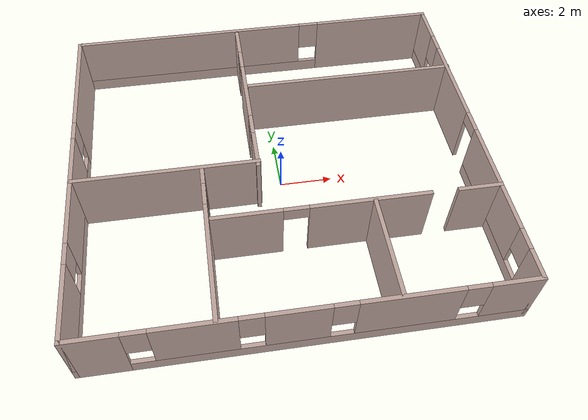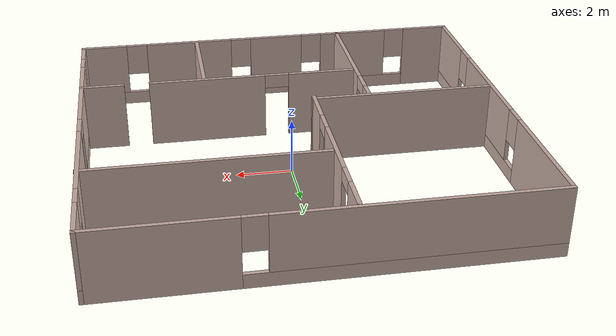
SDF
<?xml version='1.0'?>
<sdf version='1.7'>
  <model name='mapa'>
    <pose>-0.117898 -0.023817 0 0 -0 0</pose>
    <link name='Wall_11'>
      <collision name='Wall_11_Collision'>
        <geometry>
          <box>
            <size>6.75 0.15 2.5</size>
          </box>
        </geometry>
        <pose>0 0 1.25 0 -0 0</pose>
      </collision>
      <visual name='Wall_11_Visual'>
        <pose>0 0 1.25 0 -0 0</pose>
        <geometry>
          <box>
            <size>6.75 0.15 2.5</size>
          </box>
        </geometry>
        <material>
          <script>
            <uri>file://media/materials/scripts/gazebo.material</uri>
            <name>Gazebo/Grey</name>
          </script>
          <ambient>0.760784 0.662745 0.627451 1</ambient>
        </material>
        <meta>
          <layer>0</layer>
        </meta>
      </visual>
      <pose>-4.09658 -0.686555 0 0 -0 0</pose>
    </link>
    <link name='Wall_14'>
      <pose>-0.830677 2.83211 0 0 -0 -1.5708</pose>
      <visual name='Wall_14_Visual_0'>
        <pose>-3.08947 0 1.25 0 -0 0</pose>
        <geometry>
          <box>
            <size>1.32107 0.15 2.5</size>
          </box>
        </geometry>
        <material>
          <script>
            <uri>file://media/materials/scripts/gazebo.material</uri>
            <name>Gazebo/Grey</name>
          </script>
          <ambient>0.760784 0.662745 0.627451 1</ambient>
        </material>
        <meta>
          <layer>0</layer>
        </meta>
      </visual>
      <collision name='Wall_14_Collision_0'>
        <geometry>
          <box>
            <size>1.32107 0.15 2.5</size>
          </box>
        </geometry>
        <pose>-3.08947 0 1.25 0 -0 0</pose>
      </collision>
      <visual name='Wall_14_Visual_1'>
        <pose>-0.138075 0 1.25 0 -0 0</pose>
        <geometry>
          <box>
            <size>2.78171 0.15 2.5</size>
          </box>
        </geometry>
        <material>
          <script>
            <uri>file://media/materials/scripts/gazebo.material</uri>
            <name>Gazebo/Grey</name>
          </script>
          <ambient>0.760784 0.662745 0.627451 1</ambient>
        </material>
        <meta>
          <layer>0</layer>
        </meta>
      </visual>
      <collision name='Wall_14_Collision_1'>
        <geometry>
          <box>
            <size>2.78171 0.15 2.5</size>
          </box>
        </geometry>
        <pose>-0.138075 0 1.25 0 -0 0</pose>
      </collision>
      <visual name='Wall_14_Visual_2'>
        <pose>2.95139 0 1.25 0 -0 0</pose>
        <geometry>
          <box>
            <size>1.59722 0.15 2.5</size>
          </box>
        </geometry>
        <material>
          <script>
            <uri>file://media/materials/scripts/gazebo.material</uri>
            <name>Gazebo/Grey</name>
          </script>
          <ambient>0.760784 0.662745 0.627451 1</ambient>
        </material>
        <meta>
          <layer>0</layer>
        </meta>
      </visual>
      <collision name='Wall_14_Collision_2'>
        <geometry>
          <box>
            <size>1.59722 0.15 2.5</size>
          </box>
        </geometry>
        <pose>2.95139 0 1.25 0 -0 0</pose>
      </collision>
      <visual name='Wall_14_Visual_3'>
        <pose>-1.97893 0 2.25 0 -0 0</pose>
        <geometry>
          <box>
            <size>0.9 0.15 0.5</size>
          </box>
        </geometry>
        <material>
          <script>
            <uri>file://media/materials/scripts/gazebo.material</uri>
            <name>Gazebo/Grey</name>
          </script>
          <ambient>0.760784 0.662745 0.627451 1</ambient>
        </material>
        <meta>
          <layer>0</layer>
        </meta>
      </visual>
      <collision name='Wall_14_Collision_3'>
        <geometry>
          <box>
            <size>0.9 0.15 0.5</size>
          </box>
        </geometry>
        <pose>-1.97893 0 2.25 0 -0 0</pose>
      </collision>
      <visual name='Wall_14_Visual_4'>
        <pose>1.70278 0 2.25 0 -0 0</pose>
        <geometry>
          <box>
            <size>0.9 0.15 0.5</size>
          </box>
        </geometry>
        <material>
          <script>
            <uri>file://media/materials/scripts/gazebo.material</uri>
            <name>Gazebo/Grey</name>
          </script>
          <ambient>0.760784 0.662745 0.627451 1</ambient>
        </material>
        <meta>
          <layer>0</layer>
        </meta>
      </visual>
      <collision name='Wall_14_Collision_4'>
        <geometry>
          <box>
            <size>0.9 0.15 0.5</size>
          </box>
        </geometry>
        <pose>1.70278 0 2.25 0 -0 0</pose>
      </collision>
    </link>
    <link name='Wall_16'>
      <collision name='Wall_16_Collision'>
        <geometry>
          <box>
            <size>8.25 0.15 2.5</size>
          </box>
        </geometry>
        <pose>0 0 1.25 0 -0 0</pose>
      </collision>
      <visual name='Wall_16_Visual'>
        <pose>0 0 1.25 0 -0 0</pose>
        <geometry>
          <box>
            <size>8.25 0.15 2.5</size>
          </box>
        </geometry>
        <material>
          <script>
            <uri>file://media/materials/scripts/gazebo.material</uri>
            <name>Gazebo/Grey</name>
          </script>
          <ambient>0.760784 0.662745 0.627451 1</ambient>
        </material>
        <meta>
          <layer>0</layer>
        </meta>
      </visual>
      <pose>3.38377 3.20682 0 0 -0 0</pose>
    </link>
    <link name='Wall_18'>
      <pose>-2.84108 -3.69622 0 0 -0 -1.5708</pose>
      <visual name='Wall_18_Visual_0'>
        <pose>-2.63143 0 1.25 0 -0 0</pose>
        <geometry>
          <box>
            <size>0.73714 0.15 2.5</size>
          </box>
        </geometry>
        <material>
          <script>
            <uri>file://media/materials/scripts/gazebo.material</uri>
            <name>Gazebo/Grey</name>
          </script>
          <ambient>0.760784 0.662745 0.627451 1</ambient>
        </material>
        <meta>
          <layer>0</layer>
        </meta>
      </visual>
      <collision name='Wall_18_Collision_0'>
        <geometry>
          <box>
            <size>0.73714 0.15 2.5</size>
          </box>
        </geometry>
        <pose>-2.63143 0 1.25 0 -0 0</pose>
      </collision>
      <visual name='Wall_18_Visual_1'>
        <pose>0.81857 0 1.25 0 -0 0</pose>
        <geometry>
          <box>
            <size>4.36286 0.15 2.5</size>
          </box>
        </geometry>
        <material>
          <script>
            <uri>file://media/materials/scripts/gazebo.material</uri>
            <name>Gazebo/Grey</name>
          </script>
          <ambient>0.760784 0.662745 0.627451 1</ambient>
        </material>
        <meta>
          <layer>0</layer>
        </meta>
      </visual>
      <collision name='Wall_18_Collision_1'>
        <geometry>
          <box>
            <size>4.36286 0.15 2.5</size>
          </box>
        </geometry>
        <pose>0.81857 0 1.25 0 -0 0</pose>
      </collision>
      <visual name='Wall_18_Visual_2'>
        <pose>-1.81286 0 2.25 0 -0 0</pose>
        <geometry>
          <box>
            <size>0.9 0.15 0.5</size>
          </box>
        </geometry>
        <material>
          <script>
            <uri>file://media/materials/scripts/gazebo.material</uri>
            <name>Gazebo/Grey</name>
          </script>
          <ambient>0.760784 0.662745 0.627451 1</ambient>
        </material>
        <meta>
          <layer>0</layer>
        </meta>
      </visual>
      <collision name='Wall_18_Collision_2'>
        <geometry>
          <box>
            <size>0.9 0.15 0.5</size>
          </box>
        </geometry>
        <pose>-1.81286 0 2.25 0 -0 0</pose>
      </collision>
    </link>
    <link name='Wall_20'>
      <pose>2.37337 -2.95272 0 0 -0 0</pose>
      <visual name='Wall_20_Visual_0'>
        <pose>-3.87242 0 1.25 0 -0 0</pose>
        <geometry>
          <box>
            <size>2.50516 0.15 2.5</size>
          </box>
        </geometry>
        <material>
          <script>
            <uri>file://media/materials/scripts/gazebo.material</uri>
            <name>Gazebo/Grey</name>
          </script>
          <ambient>0.760784 0.662745 0.627451 1</ambient>
        </material>
        <meta>
          <layer>0</layer>
        </meta>
      </visual>
      <collision name='Wall_20_Collision_0'>
        <geometry>
          <box>
            <size>2.50516 0.15 2.5</size>
          </box>
        </geometry>
        <pose>-3.87242 0 1.25 0 -0 0</pose>
      </collision>
      <visual name='Wall_20_Visual_1'>
        <pose>0.438995 0 1.25 0 -0 0</pose>
        <geometry>
          <box>
            <size>4.31768 0.15 2.5</size>
          </box>
        </geometry>
        <material>
          <script>
            <uri>file://media/materials/scripts/gazebo.material</uri>
            <name>Gazebo/Grey</name>
          </script>
          <ambient>0.760784 0.662745 0.627451 1</ambient>
        </material>
        <meta>
          <layer>0</layer>
        </meta>
      </visual>
      <collision name='Wall_20_Collision_1'>
        <geometry>
          <box>
            <size>4.31768 0.15 2.5</size>
          </box>
        </geometry>
        <pose>0.438995 0 1.25 0 -0 0</pose>
      </collision>
      <visual name='Wall_20_Visual_2'>
        <pose>4.31142 0 1.25 0 -0 0</pose>
        <geometry>
          <box>
            <size>1.62717 0.15 2.5</size>
          </box>
        </geometry>
        <material>
          <script>
            <uri>file://media/materials/scripts/gazebo.material</uri>
            <name>Gazebo/Grey</name>
          </script>
          <ambient>0.760784 0.662745 0.627451 1</ambient>
        </material>
        <meta>
          <layer>0</layer>
        </meta>
      </visual>
      <collision name='Wall_20_Collision_2'>
        <geometry>
          <box>
            <size>1.62717 0.15 2.5</size>
          </box>
        </geometry>
        <pose>4.31142 0 1.25 0 -0 0</pose>
      </collision>
      <visual name='Wall_20_Visual_3'>
        <pose>-2.16984 0 2.25 0 -0 0</pose>
        <geometry>
          <box>
            <size>0.9 0.15 0.5</size>
          </box>
        </geometry>
        <material>
          <script>
            <uri>file://media/materials/scripts/gazebo.material</uri>
            <name>Gazebo/Grey</name>
          </script>
          <ambient>0.760784 0.662745 0.627451 1</ambient>
        </material>
        <meta>
          <layer>0</layer>
        </meta>
      </visual>
      <collision name='Wall_20_Collision_3'>
        <geometry>
          <box>
            <size>0.9 0.15 0.5</size>
          </box>
        </geometry>
        <pose>-2.16984 0 2.25 0 -0 0</pose>
      </collision>
      <visual name='Wall_20_Visual_4'>
        <pose>2.59783 0 2.25 0 -0 0</pose>
        <geometry>
          <box>
            <size>0 0.15 0.5</size>
          </box>
        </geometry>
        <material>
          <script>
            <uri>file://media/materials/scripts/gazebo.material</uri>
            <name>Gazebo/Grey</name>
          </script>
          <ambient>0.760784 0.662745 0.627451 1</ambient>
        </material>
        <meta>
          <layer>0</layer>
        </meta>
      </visual>
      <collision name='Wall_20_Collision_4'>
        <geometry>
          <box>
            <size>0 0.15 0.5</size>
          </box>
        </geometry>
        <pose>2.59783 0 2.25 0 -0 0</pose>
      </collision>
    </link>
    <link name='Wall_22'>
      <collision name='Wall_22_Collision'>
        <geometry>
          <box>
            <size>3.75 0.15 2.5</size>
          </box>
        </geometry>
        <pose>0 0 1.25 0 -0 0</pose>
      </collision>
      <visual name='Wall_22_Visual'>
        <pose>0 0 1.25 0 -0 0</pose>
        <geometry>
          <box>
            <size>3.75 0.15 2.5</size>
          </box>
        </geometry>
        <material>
          <script>
            <uri>file://media/materials/scripts/gazebo.material</uri>
            <name>Gazebo/Grey</name>
          </script>
          <ambient>0.760784 0.662745 0.627451 1</ambient>
        </material>
        <meta>
          <layer>0</layer>
        </meta>
      </visual>
      <pose>2.93349 -4.83162 0 0 -0 -1.5708</pose>
    </link>
    <link name='Wall_6'>
      <pose>-0.008773 -6.675 0 0 -0 0</pose>
      <visual name='Wall_6_Visual_0'>
        <pose>-6.58523 0 1.25 0 -0 0</pose>
        <geometry>
          <box>
            <size>1.82954 0.15 2.5</size>
          </box>
        </geometry>
        <material>
          <script>
            <uri>file://media/materials/scripts/gazebo.material</uri>
            <name>Gazebo/Grey</name>
          </script>
          <ambient>0.760784 0.662745 0.627451 1</ambient>
        </material>
        <meta>
          <layer>0</layer>
        </meta>
      </visual>
      <collision name='Wall_6_Collision_0'>
        <geometry>
          <box>
            <size>1.82954 0.15 2.5</size>
          </box>
        </geometry>
        <pose>-6.58523 0 1.25 0 -0 0</pose>
      </collision>
      <visual name='Wall_6_Visual_1'>
        <pose>0.914769 0 0.25 0 -0 0</pose>
        <geometry>
          <box>
            <size>13.1705 0.15 0.5</size>
          </box>
        </geometry>
        <material>
          <script>
            <uri>file://media/materials/scripts/gazebo.material</uri>
            <name>Gazebo/Grey</name>
          </script>
          <ambient>0.760784 0.662745 0.627451 1</ambient>
        </material>
        <meta>
          <layer>0</layer>
        </meta>
      </visual>
      <collision name='Wall_6_Collision_1'>
        <geometry>
          <box>
            <size>13.1705 0.15 0.5</size>
          </box>
        </geometry>
        <pose>0.914769 0 0.25 0 -0 0</pose>
      </collision>
      <visual name='Wall_6_Visual_2'>
        <pose>-3.5167 0 1.5 0 -0 0</pose>
        <geometry>
          <box>
            <size>2.70752 0.15 2</size>
          </box>
        </geometry>
        <material>
          <script>
            <uri>file://media/materials/scripts/gazebo.material</uri>
            <name>Gazebo/Grey</name>
          </script>
          <ambient>0.760784 0.662745 0.627451 1</ambient>
        </material>
        <meta>
          <layer>0</layer>
        </meta>
      </visual>
      <collision name='Wall_6_Collision_2'>
        <geometry>
          <box>
            <size>2.70752 0.15 2</size>
          </box>
        </geometry>
        <pose>-3.5167 0 1.5 0 -0 0</pose>
      </collision>
      <visual name='Wall_6_Visual_3'>
        <pose>-0.308608 0 1.5 0 -0 0</pose>
        <geometry>
          <box>
            <size>2.10867 0.15 2</size>
          </box>
        </geometry>
        <material>
          <script>
            <uri>file://media/materials/scripts/gazebo.material</uri>
            <name>Gazebo/Grey</name>
          </script>
          <ambient>0.760784 0.662745 0.627451 1</ambient>
        </material>
        <meta>
          <layer>0</layer>
        </meta>
      </visual>
      <collision name='Wall_6_Collision_3'>
        <geometry>
          <box>
            <size>2.10867 0.15 2</size>
          </box>
        </geometry>
        <pose>-0.308608 0 1.5 0 -0 0</pose>
      </collision>
      <visual name='Wall_6_Visual_4'>
        <pose>3.24168 0 1.5 0 -0 0</pose>
        <geometry>
          <box>
            <size>3.39191 0.15 2</size>
          </box>
        </geometry>
        <material>
          <script>
            <uri>file://media/materials/scripts/gazebo.material</uri>
            <name>Gazebo/Grey</name>
          </script>
          <ambient>0.760784 0.662745 0.627451 1</ambient>
        </material>
        <meta>
          <layer>0</layer>
        </meta>
      </visual>
      <collision name='Wall_6_Collision_4'>
        <geometry>
          <box>
            <size>3.39191 0.15 2</size>
          </box>
        </geometry>
        <pose>3.24168 0 1.5 0 -0 0</pose>
      </collision>
      <visual name='Wall_6_Visual_5'>
        <pose>6.61882 0 1.5 0 -0 0</pose>
        <geometry>
          <box>
            <size>1.76236 0.15 2</size>
          </box>
        </geometry>
        <material>
          <script>
            <uri>file://media/materials/scripts/gazebo.material</uri>
            <name>Gazebo/Grey</name>
          </script>
          <ambient>0.760784 0.662745 0.627451 1</ambient>
        </material>
        <meta>
          <layer>0</layer>
        </meta>
      </visual>
      <collision name='Wall_6_Collision_5'>
        <geometry>
          <box>
            <size>1.76236 0.15 2</size>
          </box>
        </geometry>
        <pose>6.61882 0 1.5 0 -0 0</pose>
      </collision>
      <visual name='Wall_6_Visual_6'>
        <pose>-5.27046 0 1.9 0 -0 0</pose>
        <geometry>
          <box>
            <size>0.8 0.15 1.2</size>
          </box>
        </geometry>
        <material>
          <script>
            <uri>file://media/materials/scripts/gazebo.material</uri>
            <name>Gazebo/Grey</name>
          </script>
          <ambient>0.760784 0.662745 0.627451 1</ambient>
        </material>
        <meta>
          <layer>0</layer>
        </meta>
      </visual>
      <collision name='Wall_6_Collision_6'>
        <geometry>
          <box>
            <size>0.8 0.15 1.2</size>
          </box>
        </geometry>
        <pose>-5.27046 0 1.9 0 -0 0</pose>
      </collision>
      <visual name='Wall_6_Visual_7'>
        <pose>-1.76294 0 1.9 0 -0 0</pose>
        <geometry>
          <box>
            <size>0.8 0.15 1.2</size>
          </box>
        </geometry>
        <material>
          <script>
            <uri>file://media/materials/scripts/gazebo.material</uri>
            <name>Gazebo/Grey</name>
          </script>
          <ambient>0.760784 0.662745 0.627451 1</ambient>
        </material>
        <meta>
          <layer>0</layer>
        </meta>
      </visual>
      <collision name='Wall_6_Collision_7'>
        <geometry>
          <box>
            <size>0.8 0.15 1.2</size>
          </box>
        </geometry>
        <pose>-1.76294 0 1.9 0 -0 0</pose>
      </collision>
      <visual name='Wall_6_Visual_8'>
        <pose>1.14573 0 1.9 0 -0 0</pose>
        <geometry>
          <box>
            <size>0.8 0.15 1.2</size>
          </box>
        </geometry>
        <material>
          <script>
            <uri>file://media/materials/scripts/gazebo.material</uri>
            <name>Gazebo/Grey</name>
          </script>
          <ambient>0.760784 0.662745 0.627451 1</ambient>
        </material>
        <meta>
          <layer>0</layer>
        </meta>
      </visual>
      <collision name='Wall_6_Collision_8'>
        <geometry>
          <box>
            <size>0.8 0.15 1.2</size>
          </box>
        </geometry>
        <pose>1.14573 0 1.9 0 -0 0</pose>
      </collision>
      <visual name='Wall_6_Visual_9'>
        <pose>5.33764 0 1.9 0 -0 0</pose>
        <geometry>
          <box>
            <size>0.8 0.15 1.2</size>
          </box>
        </geometry>
        <material>
          <script>
            <uri>file://media/materials/scripts/gazebo.material</uri>
            <name>Gazebo/Grey</name>
          </script>
          <ambient>0.760784 0.662745 0.627451 1</ambient>
        </material>
        <meta>
          <layer>0</layer>
        </meta>
      </visual>
      <collision name='Wall_6_Collision_9'>
        <geometry>
          <box>
            <size>0.8 0.15 1.2</size>
          </box>
        </geometry>
        <pose>5.33764 0 1.9 0 -0 0</pose>
      </collision>
    </link>
    <link name='Wall_7'>
      <pose>7.41623 -0 0 0 -0 1.5708</pose>
      <visual name='Wall_7_Visual_0'>
        <pose>-6.18489 0 1.25 0 -0 0</pose>
        <geometry>
          <box>
            <size>1.13022 0.15 2.5</size>
          </box>
        </geometry>
        <material>
          <script>
            <uri>file://media/materials/scripts/gazebo.material</uri>
            <name>Gazebo/Grey</name>
          </script>
          <ambient>0.760784 0.662745 0.627451 1</ambient>
        </material>
        <meta>
          <layer>0</layer>
        </meta>
      </visual>
      <collision name='Wall_7_Collision_0'>
        <geometry>
          <box>
            <size>1.13022 0.15 2.5</size>
          </box>
        </geometry>
        <pose>-6.18489 0 1.25 0 -0 0</pose>
      </collision>
      <visual name='Wall_7_Visual_1'>
        <pose>2.4191 0 1.25 0 -0 0</pose>
        <geometry>
          <box>
            <size>3.76966 0.15 2.5</size>
          </box>
        </geometry>
        <material>
          <script>
            <uri>file://media/materials/scripts/gazebo.material</uri>
            <name>Gazebo/Grey</name>
          </script>
          <ambient>0.760784 0.662745 0.627451 1</ambient>
        </material>
        <meta>
          <layer>0</layer>
        </meta>
      </visual>
      <collision name='Wall_7_Collision_1'>
        <geometry>
          <box>
            <size>3.76966 0.15 2.5</size>
          </box>
        </geometry>
        <pose>2.4191 0 1.25 0 -0 0</pose>
      </collision>
      <visual name='Wall_7_Visual_2'>
        <pose>-2.99275 0 0.25 0 -0 0</pose>
        <geometry>
          <box>
            <size>5.25405 0.15 0.5</size>
          </box>
        </geometry>
        <material>
          <script>
            <uri>file://media/materials/scripts/gazebo.material</uri>
            <name>Gazebo/Grey</name>
          </script>
          <ambient>0.760784 0.662745 0.627451 1</ambient>
        </material>
        <meta>
          <layer>0</layer>
        </meta>
      </visual>
      <collision name='Wall_7_Collision_2'>
        <geometry>
          <box>
            <size>5.25405 0.15 0.5</size>
          </box>
        </geometry>
        <pose>-2.99275 0 0.25 0 -0 0</pose>
      </collision>
      <visual name='Wall_7_Visual_3'>
        <pose>5.52697 0 0.25 0 -0 0</pose>
        <geometry>
          <box>
            <size>2.44607 0.15 0.5</size>
          </box>
        </geometry>
        <material>
          <script>
            <uri>file://media/materials/scripts/gazebo.material</uri>
            <name>Gazebo/Grey</name>
          </script>
          <ambient>0.760784 0.662745 0.627451 1</ambient>
        </material>
        <meta>
          <layer>0</layer>
        </meta>
      </visual>
      <collision name='Wall_7_Collision_3'>
        <geometry>
          <box>
            <size>2.44607 0.15 0.5</size>
          </box>
        </geometry>
        <pose>5.52697 0 0.25 0 -0 0</pose>
      </collision>
      <visual name='Wall_7_Visual_4'>
        <pose>-2.59275 0 1.5 0 -0 0</pose>
        <geometry>
          <box>
            <size>4.45405 0.15 2</size>
          </box>
        </geometry>
        <material>
          <script>
            <uri>file://media/materials/scripts/gazebo.material</uri>
            <name>Gazebo/Grey</name>
          </script>
          <ambient>0.760784 0.662745 0.627451 1</ambient>
        </material>
        <meta>
          <layer>0</layer>
        </meta>
      </visual>
      <collision name='Wall_7_Collision_4'>
        <geometry>
          <box>
            <size>4.45405 0.15 2</size>
          </box>
        </geometry>
        <pose>-2.59275 0 1.5 0 -0 0</pose>
      </collision>
      <visual name='Wall_7_Visual_5'>
        <pose>-2.59275 0 1.5 0 -0 0</pose>
        <geometry>
          <box>
            <size>4.45405 0.15 2</size>
          </box>
        </geometry>
        <material>
          <script>
            <uri>file://media/materials/scripts/gazebo.material</uri>
            <name>Gazebo/Grey</name>
          </script>
          <ambient>0.760784 0.662745 0.627451 1</ambient>
        </material>
        <meta>
          <layer>0</layer>
        </meta>
      </visual>
      <collision name='Wall_7_Collision_5'>
        <geometry>
          <box>
            <size>4.45405 0.15 2</size>
          </box>
        </geometry>
        <pose>-2.59275 0 1.5 0 -0 0</pose>
      </collision>
      <visual name='Wall_7_Visual_6'>
        <pose>5.92697 0 1.5 0 -0 0</pose>
        <geometry>
          <box>
            <size>1.64607 0.15 2</size>
          </box>
        </geometry>
        <material>
          <script>
            <uri>file://media/materials/scripts/gazebo.material</uri>
            <name>Gazebo/Grey</name>
          </script>
          <ambient>0.760784 0.662745 0.627451 1</ambient>
        </material>
        <meta>
          <layer>0</layer>
        </meta>
      </visual>
      <collision name='Wall_7_Collision_6'>
        <geometry>
          <box>
            <size>1.64607 0.15 2</size>
          </box>
        </geometry>
        <pose>5.92697 0 1.5 0 -0 0</pose>
      </collision>
      <visual name='Wall_7_Visual_7'>
        <pose>-5.21978 0 1.9 0 -0 0</pose>
        <geometry>
          <box>
            <size>0.8 0.15 1.2</size>
          </box>
        </geometry>
        <material>
          <script>
            <uri>file://media/materials/scripts/gazebo.material</uri>
            <name>Gazebo/Grey</name>
          </script>
          <ambient>0.760784 0.662745 0.627451 1</ambient>
        </material>
        <meta>
          <layer>0</layer>
        </meta>
      </visual>
      <collision name='Wall_7_Collision_7'>
        <geometry>
          <box>
            <size>0.8 0.15 1.2</size>
          </box>
        </geometry>
        <pose>-5.21978 0 1.9 0 -0 0</pose>
      </collision>
      <visual name='Wall_7_Visual_8'>
        <pose>4.70393 0 1.9 0 -0 0</pose>
        <geometry>
          <box>
            <size>0.8 0.15 1.2</size>
          </box>
        </geometry>
        <material>
          <script>
            <uri>file://media/materials/scripts/gazebo.material</uri>
            <name>Gazebo/Grey</name>
          </script>
          <ambient>0.760784 0.662745 0.627451 1</ambient>
        </material>
        <meta>
          <layer>0</layer>
        </meta>
      </visual>
      <collision name='Wall_7_Collision_8'>
        <geometry>
          <box>
            <size>0.8 0.15 1.2</size>
          </box>
        </geometry>
        <pose>4.70393 0 1.9 0 -0 0</pose>
      </collision>
      <visual name='Wall_7_Visual_9'>
        <pose>0.084275 0 2.25 0 -0 0</pose>
        <geometry>
          <box>
            <size>0.9 0.15 0.5</size>
          </box>
        </geometry>
        <material>
          <script>
            <uri>file://media/materials/scripts/gazebo.material</uri>
            <name>Gazebo/Grey</name>
          </script>
          <ambient>0.760784 0.662745 0.627451 1</ambient>
        </material>
        <meta>
          <layer>0</layer>
        </meta>
      </visual>
      <collision name='Wall_7_Collision_9'>
        <geometry>
          <box>
            <size>0.9 0.15 0.5</size>
          </box>
        </geometry>
        <pose>0.084275 0 2.25 0 -0 0</pose>
      </collision>
      <visual name='Wall_7_Visual_10'>
        <pose>0.084275 0 2.25 0 -0 0</pose>
        <geometry>
          <box>
            <size>0.9 0.15 0.5</size>
          </box>
        </geometry>
        <material>
          <script>
            <uri>file://media/materials/scripts/gazebo.material</uri>
            <name>Gazebo/Grey</name>
          </script>
          <ambient>0.760784 0.662745 0.627451 1</ambient>
        </material>
        <meta>
          <layer>0</layer>
        </meta>
      </visual>
      <collision name='Wall_7_Collision_10'>
        <geometry>
          <box>
            <size>0.9 0.15 0.5</size>
          </box>
        </geometry>
        <pose>0.084275 0 2.25 0 -0 0</pose>
      </collision>
    </link>
    <link name='Wall_8'>
      <pose>-0.008773 6.675 0 0 -0 3.14159</pose>
      <visual name='Wall_8_Visual_0'>
        <pose>-5.10032 0 1.25 0 -0 0</pose>
        <geometry>
          <box>
            <size>4.79936 0.15 2.5</size>
          </box>
        </geometry>
        <material>
          <script>
            <uri>file://media/materials/scripts/gazebo.material</uri>
            <name>Gazebo/Grey</name>
          </script>
          <ambient>0.760784 0.662745 0.627451 1</ambient>
        </material>
        <meta>
          <layer>0</layer>
        </meta>
      </visual>
      <collision name='Wall_8_Collision_0'>
        <geometry>
          <box>
            <size>4.79936 0.15 2.5</size>
          </box>
        </geometry>
        <pose>-5.10032 0 1.25 0 -0 0</pose>
      </collision>
      <visual name='Wall_8_Visual_1'>
        <pose>2.39968 0 0.25 0 -0 0</pose>
        <geometry>
          <box>
            <size>10.2006 0.15 0.5</size>
          </box>
        </geometry>
        <material>
          <script>
            <uri>file://media/materials/scripts/gazebo.material</uri>
            <name>Gazebo/Grey</name>
          </script>
          <ambient>0.760784 0.662745 0.627451 1</ambient>
        </material>
        <meta>
          <layer>0</layer>
        </meta>
      </visual>
      <collision name='Wall_8_Collision_1'>
        <geometry>
          <box>
            <size>10.2006 0.15 0.5</size>
          </box>
        </geometry>
        <pose>2.39968 0 0.25 0 -0 0</pose>
      </collision>
      <visual name='Wall_8_Visual_2'>
        <pose>2.79968 0 1.5 0 -0 0</pose>
        <geometry>
          <box>
            <size>9.40064 0.15 2</size>
          </box>
        </geometry>
        <material>
          <script>
            <uri>file://media/materials/scripts/gazebo.material</uri>
            <name>Gazebo/Grey</name>
          </script>
          <ambient>0.760784 0.662745 0.627451 1</ambient>
        </material>
        <meta>
          <layer>0</layer>
        </meta>
      </visual>
      <collision name='Wall_8_Collision_2'>
        <geometry>
          <box>
            <size>9.40064 0.15 2</size>
          </box>
        </geometry>
        <pose>2.79968 0 1.5 0 -0 0</pose>
      </collision>
      <visual name='Wall_8_Visual_3'>
        <pose>-2.30064 0 1.9 0 -0 0</pose>
        <geometry>
          <box>
            <size>0.8 0.15 1.2</size>
          </box>
        </geometry>
        <material>
          <script>
            <uri>file://media/materials/scripts/gazebo.material</uri>
            <name>Gazebo/Grey</name>
          </script>
          <ambient>0.760784 0.662745 0.627451 1</ambient>
        </material>
        <meta>
          <layer>0</layer>
        </meta>
      </visual>
      <collision name='Wall_8_Collision_3'>
        <geometry>
          <box>
            <size>0.8 0.15 1.2</size>
          </box>
        </geometry>
        <pose>-2.30064 0 1.9 0 -0 0</pose>
      </collision>
    </link>
    <link name='Wall_9'>
      <pose>-7.43377 -0 0 0 -0 -1.5708</pose>
      <visual name='Wall_9_Visual_0'>
        <pose>-4.45124 0 1.25 0 -0 0</pose>
        <geometry>
          <box>
            <size>4.59751 0.15 2.5</size>
          </box>
        </geometry>
        <material>
          <script>
            <uri>file://media/materials/scripts/gazebo.material</uri>
            <name>Gazebo/Grey</name>
          </script>
          <ambient>0.760784 0.662745 0.627451 1</ambient>
        </material>
        <meta>
          <layer>0</layer>
        </meta>
      </visual>
      <collision name='Wall_9_Collision_0'>
        <geometry>
          <box>
            <size>4.59751 0.15 2.5</size>
          </box>
        </geometry>
        <pose>-4.45124 0 1.25 0 -0 0</pose>
      </collision>
      <visual name='Wall_9_Visual_1'>
        <pose>2.29876 0 0.25 0 -0 0</pose>
        <geometry>
          <box>
            <size>8.90249 0.15 0.5</size>
          </box>
        </geometry>
        <material>
          <script>
            <uri>file://media/materials/scripts/gazebo.material</uri>
            <name>Gazebo/Grey</name>
          </script>
          <ambient>0.760784 0.662745 0.627451 1</ambient>
        </material>
        <meta>
          <layer>0</layer>
        </meta>
      </visual>
      <collision name='Wall_9_Collision_1'>
        <geometry>
          <box>
            <size>8.90249 0.15 0.5</size>
          </box>
        </geometry>
        <pose>2.29876 0 0.25 0 -0 0</pose>
      </collision>
      <visual name='Wall_9_Visual_2'>
        <pose>0.942315 0 1.5 0 -0 0</pose>
        <geometry>
          <box>
            <size>4.5896 0.15 2</size>
          </box>
        </geometry>
        <material>
          <script>
            <uri>file://media/materials/scripts/gazebo.material</uri>
            <name>Gazebo/Grey</name>
          </script>
          <ambient>0.760784 0.662745 0.627451 1</ambient>
        </material>
        <meta>
          <layer>0</layer>
        </meta>
      </visual>
      <collision name='Wall_9_Collision_2'>
        <geometry>
          <box>
            <size>4.5896 0.15 2</size>
          </box>
        </geometry>
        <pose>0.942315 0 1.5 0 -0 0</pose>
      </collision>
      <visual name='Wall_9_Visual_3'>
        <pose>5.39356 0 1.5 0 -0 0</pose>
        <geometry>
          <box>
            <size>2.71288 0.15 2</size>
          </box>
        </geometry>
        <material>
          <script>
            <uri>file://media/materials/scripts/gazebo.material</uri>
            <name>Gazebo/Grey</name>
          </script>
          <ambient>0.760784 0.662745 0.627451 1</ambient>
        </material>
        <meta>
          <layer>0</layer>
        </meta>
      </visual>
      <collision name='Wall_9_Collision_3'>
        <geometry>
          <box>
            <size>2.71288 0.15 2</size>
          </box>
        </geometry>
        <pose>5.39356 0 1.5 0 -0 0</pose>
      </collision>
      <visual name='Wall_9_Visual_4'>
        <pose>-1.75249 0 1.9 0 -0 0</pose>
        <geometry>
          <box>
            <size>0.8 0.15 1.2</size>
          </box>
        </geometry>
        <material>
          <script>
            <uri>file://media/materials/scripts/gazebo.material</uri>
            <name>Gazebo/Grey</name>
          </script>
          <ambient>0.760784 0.662745 0.627451 1</ambient>
        </material>
        <meta>
          <layer>0</layer>
        </meta>
      </visual>
      <collision name='Wall_9_Collision_4'>
        <geometry>
          <box>
            <size>0.8 0.15 1.2</size>
          </box>
        </geometry>
        <pose>-1.75249 0 1.9 0 -0 0</pose>
      </collision>
      <visual name='Wall_9_Visual_5'>
        <pose>3.63712 0 1.9 0 -0 0</pose>
        <geometry>
          <box>
            <size>0.8 0.15 1.2</size>
          </box>
        </geometry>
        <material>
          <script>
            <uri>file://media/materials/scripts/gazebo.material</uri>
            <name>Gazebo/Grey</name>
          </script>
          <ambient>0.760784 0.662745 0.627451 1</ambient>
        </material>
        <meta>
          <layer>0</layer>
        </meta>
      </visual>
      <collision name='Wall_9_Collision_5'>
        <geometry>
          <box>
            <size>0.8 0.15 1.2</size>
          </box>
        </geometry>
        <pose>3.63712 0 1.9 0 -0 0</pose>
      </collision>
    </link>
    <static>1</static>
  </model>
</sdf>
